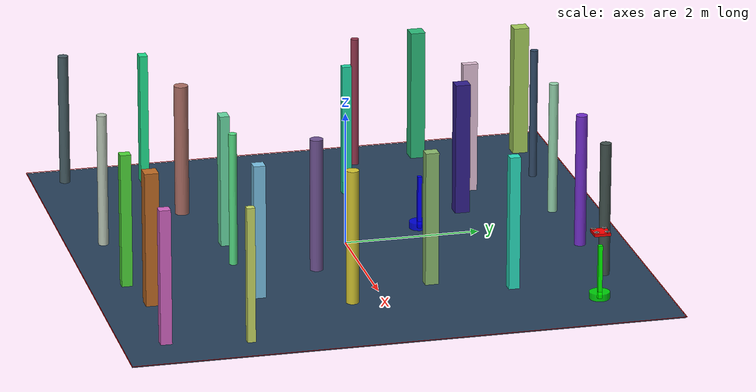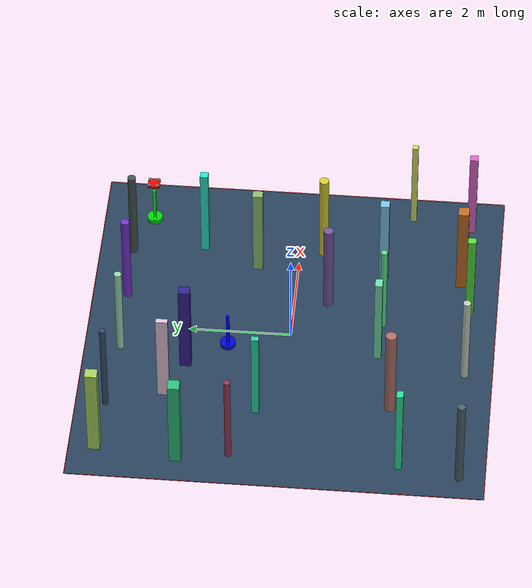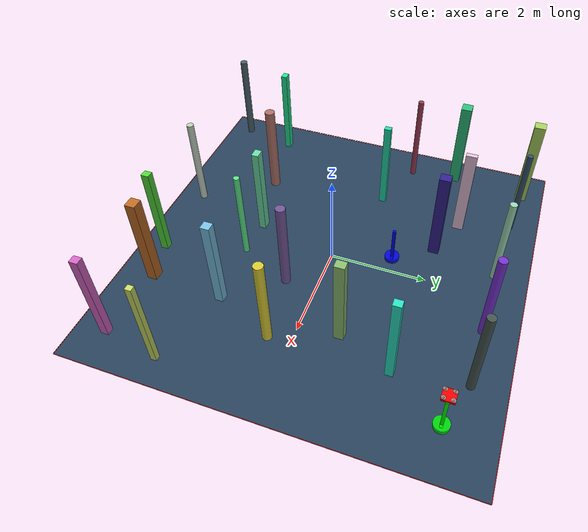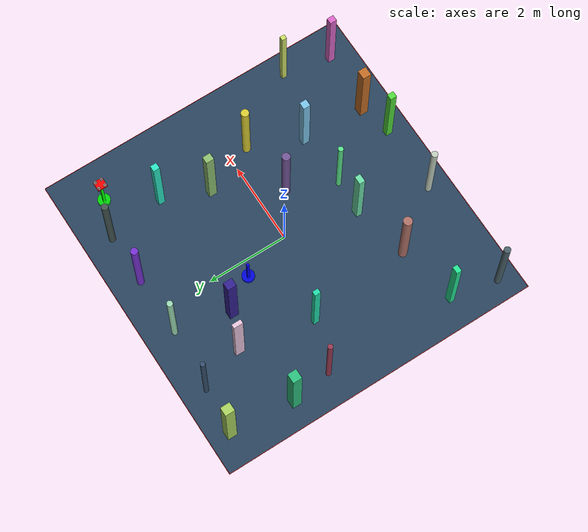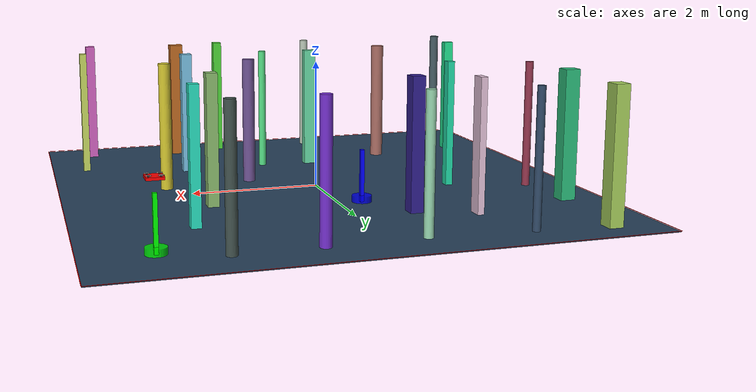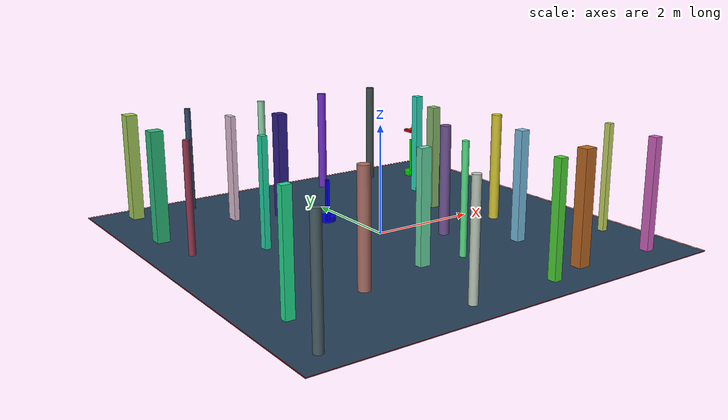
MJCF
<?xml version="1.0" encoding="UTF-8"?><?xml version='1.0' encoding='utf-8'?>
<mujoco model="complex_uav_env">
  <compiler angle="degree" coordinate="local" inertiafromgeom="true" />
  <option integrator="RK4" timestep="0.01" />

  <visual>
    <headlight diffuse="0.6 0.6 0.6" ambient="0.3 0.3 0.3" />
    <rgba haze="0.15 0.25 0.35 1" />
    <global offwidth="2560" offheight="1440" />
  </visual>

  <asset>
    <texture type="skybox" builtin="gradient" rgb1="0.3 0.5 0.7" rgb2="0 0 0" width="512" height="3072" />
    <texture name="grid" type="2d" builtin="checker" rgb1="0.1 0.2 0.3" rgb2="0.2 0.3 0.4" width="512" height="512" />
    <material name="grid" texture="grid" texrepeat="1 1" />
  </asset>

  <worldbody>

    <geom name="ground" type="plane" size="4.0 4.0 0.1" material="grid" />
    <light name="light1" pos="0 0 4" dir="0 0 -1" diffuse="1 1 1" />

    <geom name="start_marker" type="cylinder" size="0.15 0.05" pos="3.0 3.0 0.05" rgba="0 1 0 0.8" />
    <geom name="start_pole" type="box" size="0.03 0.03 0.4" pos="3.0 3.0 0.4" rgba="0 1 0 1" />

    <geom name="goal_marker" type="cylinder" size="0.15 0.05" pos="-0.3625280850348038 1.204213776285476 0.05" rgba="0 0 1 0.8" />
    <geom name="goal_pole" type="box" size="0.03 0.03 0.4" pos="-0.3625280850348038 1.204213776285476 0.4" rgba="0 0 1 1" />

    <body name="chassis" pos="3.0 3.0 1.0">
      <joint type="free" name="root" />
      <geom type="box" size="0.12 0.12 0.02" rgba="1.0 0.0 0.0 1.0" mass="0.8" />

      <geom type="box" size="0.08 0.01 0.005" pos="0 0 0.01" rgba="0.3 0.3 0.3 1" />
      <geom type="box" size="0.01 0.08 0.005" pos="0 0 0.01" rgba="0.3 0.3 0.3 1" />

      <geom type="cylinder" size="0.015 0.02" pos="0.08 0.08 0.015" rgba="0.2 0.2 0.2 1" />
      <geom type="cylinder" size="0.015 0.02" pos="-0.08 0.08 0.015" rgba="0.2 0.2 0.2 1" />
      <geom type="cylinder" size="0.015 0.02" pos="0.08 -0.08 0.015" rgba="0.2 0.2 0.2 1" />
      <geom type="cylinder" size="0.015 0.02" pos="-0.08 -0.08 0.015" rgba="0.2 0.2 0.2 1" />

      <geom type="cylinder" size="0.04 0.002" pos="0.08 0.08 0.035" rgba="0.7 0.7 0.7 0.8" />
      <geom type="cylinder" size="0.04 0.002" pos="-0.08 0.08 0.035" rgba="0.7 0.7 0.7 0.8" />
      <geom type="cylinder" size="0.04 0.002" pos="0.08 -0.08 0.035" rgba="0.7 0.7 0.7 0.8" />
      <geom type="cylinder" size="0.04 0.002" pos="-0.08 -0.08 0.035" rgba="0.7 0.7 0.7 0.8" />

      <site name="motor1" pos="0.08 0.08 0" size="0.01" />
      <site name="motor2" pos="-0.08 0.08 0" size="0.01" />
      <site name="motor3" pos="0.08 -0.08 0" size="0.01" />
      <site name="motor4" pos="-0.08 -0.08 0" size="0.01" />
    </body>
    <geom name="test_obs_0" type="box" size="0.09851700389869443 0.07083388869196838 1.0" pos="-0.3853983793897437 -1.7324115827126367 1.0" rgba="0.41130005883332 0.858408453352172 0.6488787179396251 1.0" />
    <geom name="test_obs_1" type="cylinder" size="0.08521997293495173 1.0" pos="0.8588074199547862 3.316987904773061 1.0" rgba="0.45535793480997666 0.18420887403054742 0.8057359559614149 1.0" />
    <geom name="test_obs_2" type="cylinder" size="0.0748615669183104 1.0" pos="-0.7866385242138161 -3.4509044796105433 1.0" rgba="0.7378512239314122 0.7902017445732502 0.7264099806831896 1.0" />
    <geom name="test_obs_3" type="cylinder" size="0.0789834226953051 1.0" pos="-3.5 -3.5 1.0" rgba="0.2800390995141416 0.36736593290184805 0.3957208091217779 1.0" />
    <geom name="test_obs_4" type="box" size="0.11130427315074792 0.10393804494812439 1.0" pos="1.704701118058046 -3.2495963021000076 1.0" rgba="0.749856212076777 0.41771824749355835 0.1410638697674619 1.0" />
    <geom name="test_obs_5" type="box" size="0.05408898563429695 0.05933385436763303 1.0" pos="3.441230095973607 -2.1928064098528153 1.0" rgba="0.7903690089689819 0.8607233327465854 0.39372815551535845 1.0" />
    <geom name="test_obs_6" type="box" size="0.10628768803372102 0.11681198765384398 1.0" pos="-3.2268415654900813 3.5 1.0" rgba="0.6487172374528021 0.8066220754789919 0.36054271038293717 1.0" />
    <geom name="test_obs_7" type="cylinder" size="0.0613793557716016 1.0" pos="-3.2526406037474827 0.9289738860581067 1.0" rgba="0.5863991813829381 0.21464408440878957 0.3107068963483376 1.0" />
    <geom name="test_obs_8" type="box" size="0.08752101656876572 0.08738649219925074 1.0" pos="1.7836226207573798 -1.7014532157477706 1.0" rgba="0.4732813068820676 0.7574540921539843 0.8931111893063549 1.0" />
    <geom name="test_obs_9" type="cylinder" size="0.09435472732481696 1.0" pos="2.330895617296145 -0.4609428261517144 1.0" rgba="0.8380074757098278 0.782400197423617 0.19011884846339805 1.0" />
    <geom name="test_obs_10" type="box" size="0.07460622114165724 0.0829389012763887 1.0" pos="3.2267726267890713 -3.36867643291918 1.0" rgba="0.8346212120403267 0.3935248328658111 0.7666479652771868 1.0" />
    <geom name="test_obs_11" type="box" size="0.05023098064800623 0.11447081023318843 1.0" pos="-1.749779871080238 2.323075595106786 1.0" rgba="0.8870503404724965 0.7552333304024356 0.8452487412391587 1.0" />
    <geom name="test_obs_12" type="cylinder" size="0.0700923377926099 1.0" pos="-0.5773963892314968 3.297308049082692 1.0" rgba="0.5943730097422575 0.841311527754606 0.6892658335226385 1.0" />
    <geom name="test_obs_13" type="box" size="0.09841209328075318 0.11054979953365099 1.0" pos="-0.9044402704983732 1.9790115946502218 1.0" rgba="0.19034410055948214 0.12093782855670066 0.5541845698727094 1.0" />
    <geom name="test_obs_14" type="box" size="0.07348978351159609 0.07968048991481003 1.0" pos="0.9067526029396704 -3.4538942962421864 1.0" rgba="0.31337502888698676 0.8446877412934789 0.22579961977470228 1.0" />
    <geom name="test_obs_15" type="box" size="0.08478181074476591 0.0983212621303389 1.0" pos="1.8462605040400728 0.80864169882758 1.0" rgba="0.5447774266853151 0.7338401966843987 0.4302509318562254 1.0" />
    <geom name="test_obs_16" type="box" size="0.05633181322181429 0.07183095753551821 1.0" pos="-2.066768160947185 0.5093700835219217 1.0" rgba="0.12955146976090753 0.8541534837844028 0.6558328974744521 1.0" />
    <geom name="test_obs_17" type="cylinder" size="0.09671884800661024 1.0" pos="0.944054592880849 -0.6586005756896791 1.0" rgba="0.440725796818221 0.3296829276641449 0.5828751085915889 1.0" />
    <geom name="test_obs_18" type="cylinder" size="0.058012205225654194 1.0" pos="-2.107469009670006 3.41749841664083 1.0" rgba="0.19559033749008573 0.2958248066322806 0.4114215754948902 1.0" />
    <geom name="test_obs_19" type="box" size="0.08357910276121203 0.06296149780623723 1.0" pos="-3.2750674098340915 -2.331707484835356 1.0" rgba="0.13204970791239898 0.8862847643825981 0.5679760083651566 1.0" />
    <geom name="test_obs_20" type="box" size="0.11729370675274607 0.11148309842804797 1.0" pos="-3.389944406909501 1.9217895551850737 1.0" rgba="0.1688678415908818 0.7357397394191907 0.48015394993665783 1.0" />
    <geom name="test_obs_21" type="cylinder" size="0.10602226818590857 1.0" pos="-1.7787444136672594 -2.064819520028615 1.0" rgba="0.673051159500838 0.43149802527819403 0.3947354510216101 1.0" />
    <geom name="test_obs_22" type="cylinder" size="0.08051405740082083 1.0" pos="2.0950498503073542 3.32438609912731 1.0" rgba="0.25571507502682 0.318537881920281 0.30250538548822403 1.0" />
    <geom name="test_obs_23" type="cylinder" size="0.060769865682695386 1.0" pos="0.44394097677420236 -1.777773610162624 1.0" rgba="0.34062209722261705 0.882448894126205 0.5302963723465991 1.0" />
    <geom name="test_obs_24" type="box" size="0.07360798877151419 0.07926552957538795 1.0" pos="2.3012754317290254 1.9103442398622887 1.0" rgba="0.15937963029095467 0.8828065877883959 0.7560996283725894 1.0" />
  <geom name="boundary_north" type="box" size="4.0 0.005 0.002" pos="0 4.0 0.002" rgba="1.0 0.0 0.0 1.0" /><geom name="boundary_south" type="box" size="4.0 0.005 0.002" pos="0 -4.0 0.002" rgba="1.0 0.0 0.0 1.0" /><geom name="boundary_east" type="box" size="0.005 4.0 0.002" pos="4.0 0 0.002" rgba="1.0 0.0 0.0 1.0" /><geom name="boundary_west" type="box" size="0.005 4.0 0.002" pos="-4.0 0 0.002" rgba="1.0 0.0 0.0 1.0" /></worldbody>

  <actuator>
    <motor name="m1" gear="0 0 1 0 0 0" site="motor1" />
    <motor name="m2" gear="0 0 1 0 0 0" site="motor2" />
    <motor name="m3" gear="0 0 1 0 0 0" site="motor3" />
    <motor name="m4" gear="0 0 1 0 0 0" site="motor4" />
  </actuator>
</mujoco>
